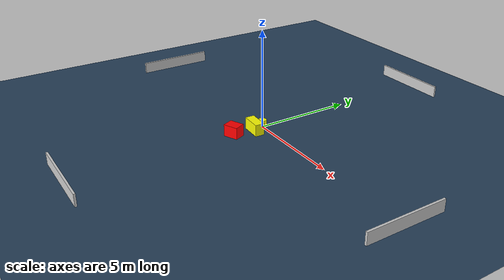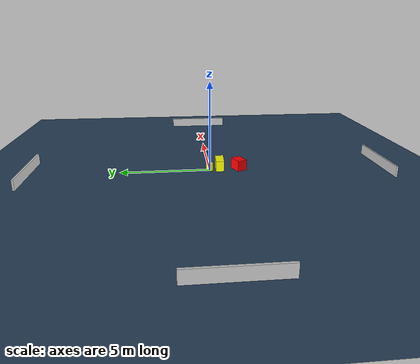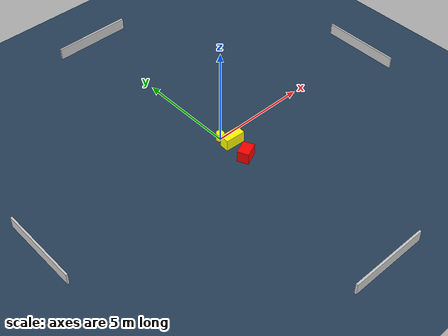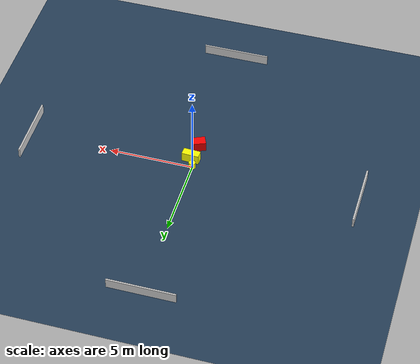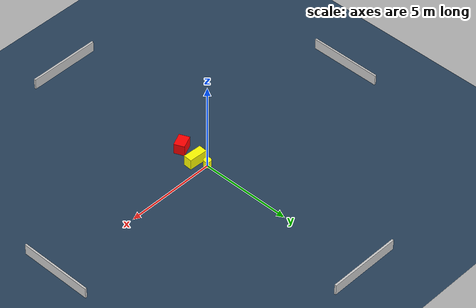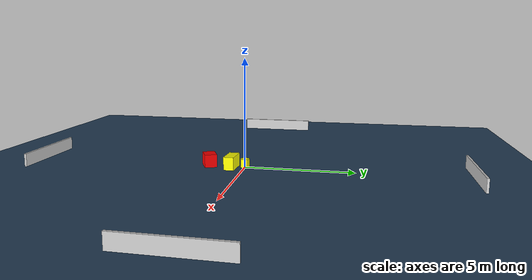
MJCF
<?xml version="1.0" ?>
<mujoco model="generated_environment">
  <option timestep="0.01" integrator="RK4" cone="elliptic"/>
  <default>
    <geom density="1"/>
  </default>
  <asset>
    <texture builtin="gradient" height="3072" name="skybox" rgb1="0.3 0.5 0.7" rgb2="0 0 0" type="skybox" width="512"/>
    <texture builtin="checker" height="300" name="groundplane" rgb1="0.2 0.3 0.4" rgb2="0.1 0.2 0.3" type="2d" width="300"/>
    <material name="groundplane" reflectance="0.2" texrepeat="5 5" texture="groundplane"/>
  </asset>
  <worldbody>
    <light dir="0 0 -1" directional="true" pos="0 0 1.5"/>
    <geom condim="3" friction="0.5 0.005 0.001" material="groundplane" name="floor" pos="0 0 0" size="0 0 0.05" type="plane"/>
    <body name="walls">
      <geom name="wall_1" condim="4" pos="-10.0 0.0 0.3" rgba="0.800000011920929 0.800000011920929 0.800000011920929 1.0" size="0.05 2.0 0.3" type="box"/>
      <geom name="wall_2" condim="4" pos="10.0 0.0 0.3" rgba="0.800000011920929 0.800000011920929 0.800000011920929 1.0" size="0.05 2.0 0.3" type="box"/>
      <geom name="wall_3" condim="4" pos="0.0 -10.0 0.3" rgba="0.800000011920929 0.800000011920929 0.800000011920929 1.0" size="2.0 0.05 0.3" type="box"/>
      <geom name="wall_4" condim="4" pos="0.0 10.0 0.3" rgba="0.800000011920929 0.800000011920929 0.800000011920929 1.0" size="2.0 0.05 0.3" type="box"/>
    </body>
    <body name="robot">
      <joint name="joint_x" type="slide" pos="0 0 0" axis="1 0 0"/>
      <joint name="joint_y" type="slide" pos="0 0 0" axis="0 1 0"/>
      <geom name="robot" type="cylinder" pos="0.0 0.0 0.2" size="0.2 0.2 0.0" mass="5.0" friction="1.0 0.005 0.0001" condim="4" rgba="1.0 1.0 0.0 1.0"/>
    </body>
    <body name="obstacle_1_movable">
      <geom name="obstacle_1_movable" condim="4" pos="0.22726414216404356 -0.5875822422027603 0.3" euler="0 0 357.01778586584624" friction="0.0 0.005 0.001" rgba="1.0 1.0 0.0 1.0" size="0.514364873812932 0.23433079164660975 0.3" type="box" mass="0.1"/>
      <joint type="free"/>
    </body>
    <body name="obstacle_2_static">
      <geom name="obstacle_2_static" condim="4" pos="0.048980052785337895 -1.6756049553034855 0.3" euler="0 0 293.7757532986292" friction="0.0 0.005 0.001" rgba="1.0 0.0 0.0 1.0" size="0.2836348303492373 0.37662528580860655 0.3" type="box"/>
    </body>
  </worldbody>
  <actuator>
    <motor name="actuator_x" joint="joint_x" gear="1" ctrlrange="-1 1"/>
    <motor name="actuator_y" joint="joint_y" gear="1" ctrlrange="-1 1"/>
  </actuator>
</mujoco>
